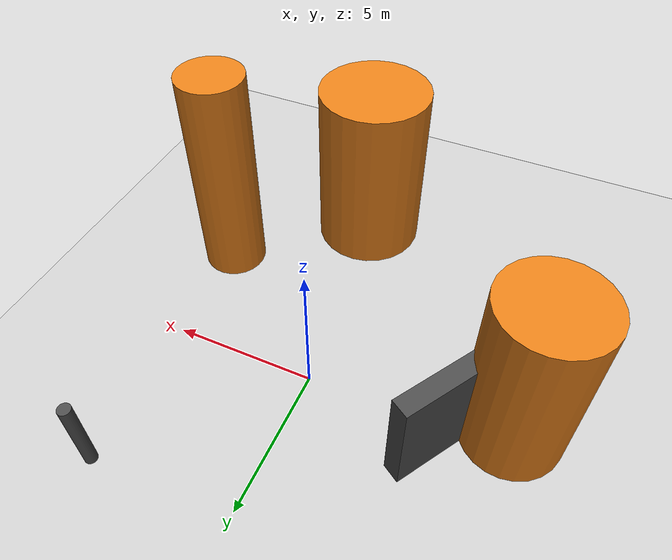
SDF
<?xml version='1.0'?>
<sdf version='1.6'>
  <world name='default'>
    <!-- Sun light -->
    <light name='sun' type='directional'>
      <cast_shadows>1</cast_shadows>
      <pose>0 0 10 0 0 0</pose>
      <diffuse>0.8 0.8 0.8 1</diffuse>
      <specular>0.2 0.2 0.2 1</specular>
      <attenuation>
        <range>1000</range>
        <constant>0.9</constant>
        <linear>0.01</linear>
        <quadratic>0.001</quadratic>
      </attenuation>
      <direction>-0.5 0.1 -0.9</direction>
    </light>

    <!-- Ground plane -->
    <model name='ground_plane'>
      <static>1</static>
      <link name='link'>
        <collision name='collision'>
          <geometry>
            <plane>
              <normal>0 0 1</normal>
              <size>100 100</size>
            </plane>
          </geometry>
          <surface>
            <contact>
              <collide_bitmask>65535</collide_bitmask>
              <ode/>
            </contact>
            <friction>
              <ode>
                <mu>100</mu>
                <mu2>50</mu2>
              </ode>
              <torsional><ode/></torsional>
            </friction>
            <bounce/>
          </surface>
          <max_contacts>10</max_contacts>
        </collision>
        <visual name='visual'>
          <cast_shadows>0</cast_shadows>
          <geometry>
            <plane>
              <normal>0 0 1</normal>
              <size>100 100</size>
            </plane>
          </geometry>
          <material>
            <script>
              <uri>file://media/materials/scripts/gazebo.material</uri>
              <n>Gazebo/Grey</n>
            </script>
          </material>
        </visual>
      </link>
    </model>

    <!-- Environment -->
    <magnetic_field>6e-06 2.3e-05 -4.2e-05</magnetic_field>
    <atmosphere type='adiabatic'/>
    <physics name='default_physics' default='0' type='ode'>
      <gravity>0 0 -9.8</gravity>
      <max_step_size>0.004</max_step_size>
      <real_time_factor>1</real_time_factor>
      <real_time_update_rate>250</real_time_update_rate>
    </physics>
    <scene>
      <ambient>0.4 0.4 0.4 1</ambient>
      <background>0.7 0.7 0.7 1</background>
      <shadows>1</shadows>
    </scene>
    <wind/>
    <spherical_coordinates>
      <surface_model>EARTH_WGS84</surface_model>
      <latitude_deg>0</latitude_deg>
      <longitude_deg>0</longitude_deg>
      <elevation>0</elevation>
      <heading_deg>0</heading_deg>
    </spherical_coordinates>

    <!-- ============ OBSTACLES (5) ============ -->
    <model name='obs_00'>
      <static>1</static>
      <link name='link'>
        <visual name='visual'>
          <geometry>
            <cylinder>
              <radius>1.1547</radius>
              <length>7.9363</length>
            </cylinder>
          </geometry>
          <material>
            <script>
              <n>Gazebo/Orange</n>
              <uri>file://media/materials/scripts/gazebo.material</uri>
            </script>
            <ambient>0.9 0.5 0.1 1</ambient>
          </material>
        </visual>
        <collision name='collision'>
          <geometry>
            <cylinder>
              <radius>1.1547</radius>
              <length>7.9363</length>
            </cylinder>
          </geometry>
          <max_contacts>10</max_contacts>
          <surface>
            <contact><ode/></contact>
            <bounce/>
            <friction>
              <ode><mu>1</mu><mu2>1</mu2></ode>
              <torsional><ode/></torsional>
            </friction>
          </surface>
        </collision>
      </link>
      <pose>5.2211 -4.1582 3.9681 0 0 0.8416</pose>
    </model>

    <model name='obs_01'>
      <static>1</static>
      <link name='link'>
        <visual name='visual'>
          <geometry>
            <box>
              <size>0.6456 3.0164 3.7318</size>
            </box>
          </geometry>
          <material>
            <script>
              <n>Gazebo/DarkGrey</n>
              <uri>file://media/materials/scripts/gazebo.material</uri>
            </script>
            <ambient>0.3 0.3 0.3 1</ambient>
          </material>
        </visual>
        <collision name='collision'>
          <geometry>
            <box>
              <size>0.6456 3.0164 3.7318</size>
            </box>
          </geometry>
          <max_contacts>10</max_contacts>
          <surface>
            <contact><ode/></contact>
            <bounce/>
            <friction>
              <ode><mu>1</mu><mu2>1</mu2></ode>
              <torsional><ode/></torsional>
            </friction>
          </surface>
        </collision>
      </link>
      <pose>-4.5029 0.7522 1.8659 0 0 2.5843</pose>
    </model>

    <model name='obs_02'>
      <static>1</static>
      <link name='link'>
        <visual name='visual'>
          <geometry>
            <cylinder>
              <radius>1.6856</radius>
              <length>6.2594</length>
            </cylinder>
          </geometry>
          <material>
            <script>
              <n>Gazebo/Orange</n>
              <uri>file://media/materials/scripts/gazebo.material</uri>
            </script>
            <ambient>0.9 0.5 0.1 1</ambient>
          </material>
        </visual>
        <collision name='collision'>
          <geometry>
            <cylinder>
              <radius>1.6856</radius>
              <length>6.2594</length>
            </cylinder>
          </geometry>
          <max_contacts>10</max_contacts>
          <surface>
            <contact><ode/></contact>
            <bounce/>
            <friction>
              <ode><mu>1</mu><mu2>1</mu2></ode>
              <torsional><ode/></torsional>
            </friction>
          </surface>
        </collision>
      </link>
      <pose>-6.6358 -0.8536 3.1297 0 0 0.3218</pose>
    </model>

    <model name='obs_03'>
      <static>1</static>
      <link name='link'>
        <visual name='visual'>
          <geometry>
            <cylinder>
              <radius>0.2096</radius>
              <length>2.8397</length>
            </cylinder>
          </geometry>
          <material>
            <script>
              <n>Gazebo/DarkGrey</n>
              <uri>file://media/materials/scripts/gazebo.material</uri>
            </script>
            <ambient>0.3 0.3 0.3 1</ambient>
          </material>
        </visual>
        <collision name='collision'>
          <geometry>
            <cylinder>
              <radius>0.2096</radius>
              <length>2.8397</length>
            </cylinder>
          </geometry>
          <max_contacts>10</max_contacts>
          <surface>
            <contact><ode/></contact>
            <bounce/>
            <friction>
              <ode><mu>1</mu><mu2>1</mu2></ode>
              <torsional><ode/></torsional>
            </friction>
          </surface>
        </collision>
      </link>
      <pose>4.8504 5.3184 1.4199 0 0 2.7483</pose>
    </model>

    <model name='obs_04'>
      <static>1</static>
      <link name='link'>
        <visual name='visual'>
          <geometry>
            <cylinder>
              <radius>1.9888</radius>
              <length>6.4294</length>
            </cylinder>
          </geometry>
          <material>
            <script>
              <n>Gazebo/Orange</n>
              <uri>file://media/materials/scripts/gazebo.material</uri>
            </script>
            <ambient>0.9 0.5 0.1 1</ambient>
          </material>
        </visual>
        <collision name='collision'>
          <geometry>
            <cylinder>
              <radius>1.9888</radius>
              <length>6.4294</length>
            </cylinder>
          </geometry>
          <max_contacts>10</max_contacts>
          <surface>
            <contact><ode/></contact>
            <bounce/>
            <friction>
              <ode><mu>1</mu><mu2>1</mu2></ode>
              <torsional><ode/></torsional>
            </friction>
          </surface>
        </collision>
      </link>
      <pose>0.9945 -7.7358 3.2147 0 0 1.3794</pose>
    </model>

    <!-- GUI camera -->
    <gui fullscreen='0'>
      <camera name='user_camera'>
        <pose>-15 0 18 0 0.85 0.15</pose>
        <view_controller>orbit</view_controller>
        <projection_type>perspective</projection_type>
      </camera>
    </gui>
  </world>
</sdf>
